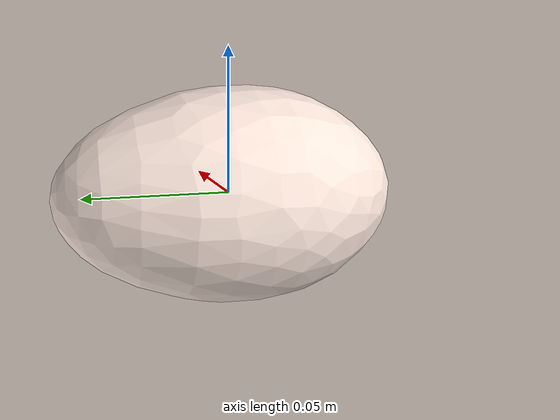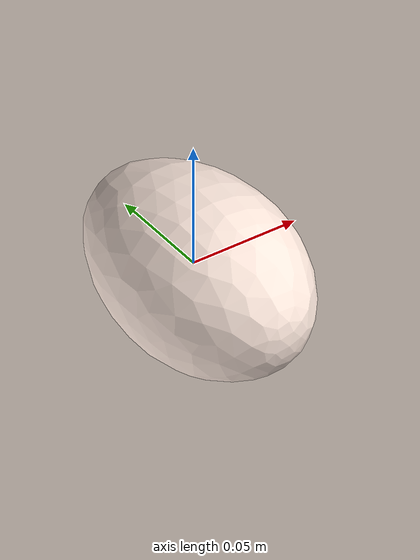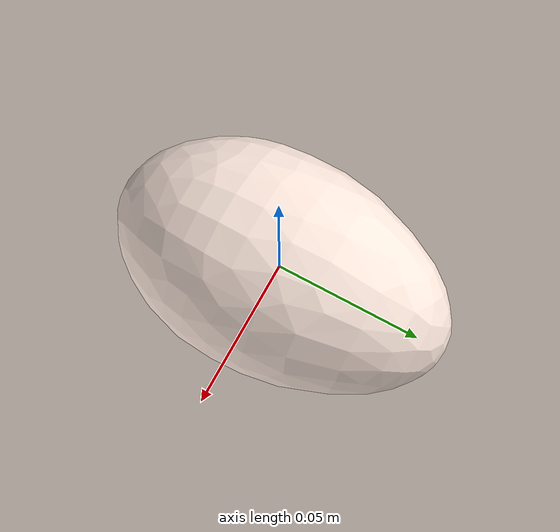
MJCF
<mujoco model="Egg_29">
  <compiler autolimits="true" boundmass="0.01" angle="radian"/>
  <default>
    <default class="/">
      <default class="__VISUAL_MJT__">
        <geom contype="0" conaffinity="0" group="0"/>
      </default>
      <default class="__STRUCTURAL_MJT__">
        <geom contype="8" conaffinity="15" group="4" friction="0.90000000000000002 0.90000000000000002 0.001" solref="0.025000000000000001 1" solimp="0.998 0.998 0.001"/>
      </default>
      <default class="__DYNAMIC_MJT__">
        <geom contype="1" conaffinity="15" group="4" friction="0.90000000000000002 0.90000000000000002 0.001" solref="0.025000000000000001 1" solimp="0.998 0.998 0.001"/>
      </default>
    </default>
  </default>
  <asset>
    <material name="material_Egg5_Mat" class="/" specular="0.5" shininess="0.5" rgba="1 0.91935489999999997 0.875 1"/>
    <mesh name="Egg_29_egg_29" class="/" file="Egg_29_egg_29/Egg_29_egg_29.obj" scale="1 1 1"/>
  </asset>
  <worldbody>
    <body name="Egg_29">
      <joint name="Egg_29_free" class="/" type="free" pos="0 0 0" axis="0 0 1" stiffness="0" range="0 0" armature="0" damping="0.10000000000000001" frictionloss="0"/>
      <body name="Egg_29_egg_29" pos="-0.00019000000000000001 0 -0.00012999999999999999" quat="1 0 0 0">
        <geom name="Egg_29_egg_29" class="__VISUAL_MJT__" type="mesh" material="material_Egg5_Mat" shellinertia="true" mesh="Egg_29_egg_29"/>
        <geom name="Egg_29_PrimitiveCollider_0" class="__DYNAMIC_MJT__" type="capsule" size="0.033250730484724045 0.024300131946802139" rgba="0 1 0 1" pos="-0 0 0" quat="0.70710678118654757 0.70710678118654746 0 0"/>
      </body>
    </body>
  </worldbody>
</mujoco>
